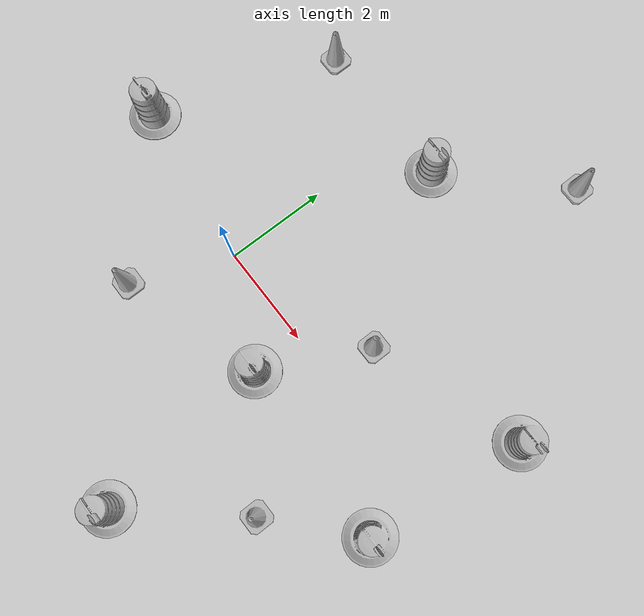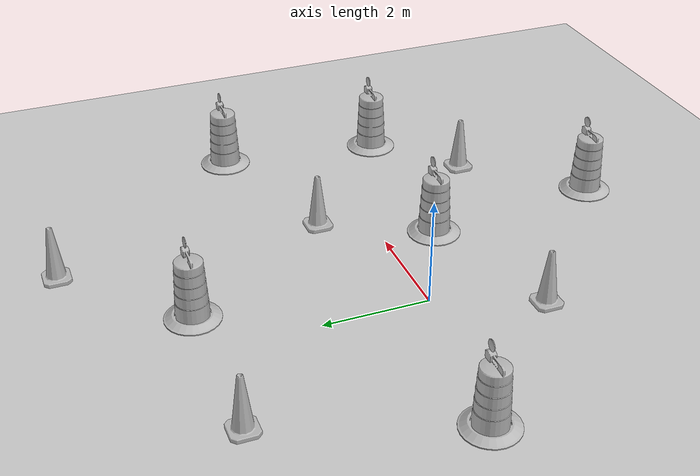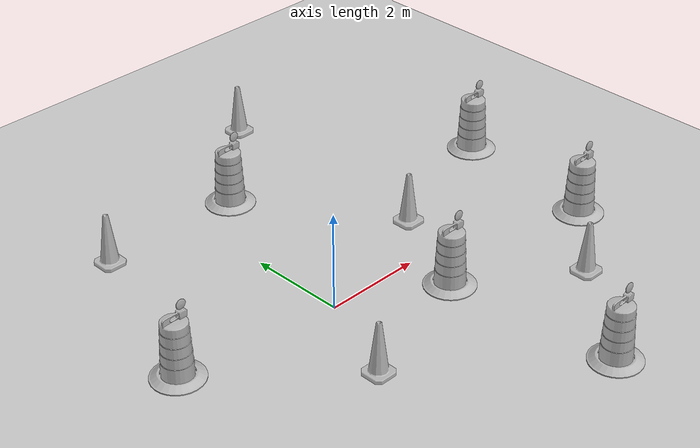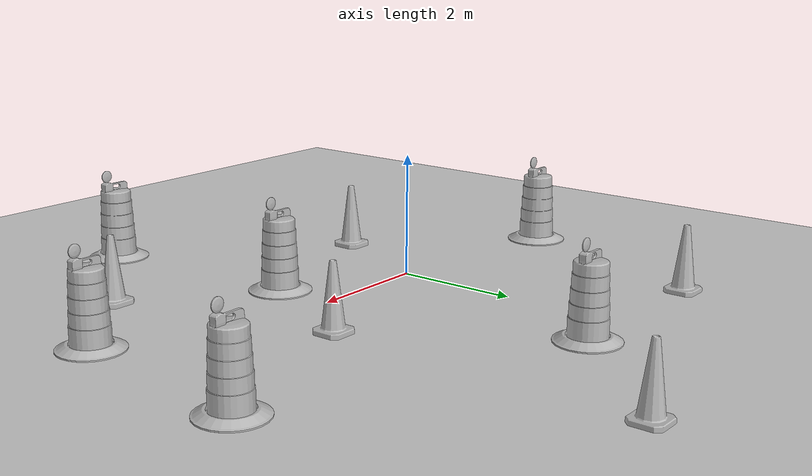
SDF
<sdf version="1.7">
 <world name="default">
  <light name="sun" type="directional">
   <pose>0 0 10 0 -0 0</pose>
   <diffuse>0.8 0.8 0.8 1</diffuse>
   <specular>0.2 0.2 0.2 1</specular>
   <attenuation>
    <range>1000</range>
    <constant>0.9</constant>
    <linear>0.01</linear>
    <quadratic>0.001</quadratic>
   </attenuation>
   <direction>-0.5 0.1 -0.9</direction>
   <spot><inner_angle>0</inner_angle><outer_angle>0</outer_angle><falloff>0</falloff></spot>
  </light>
  <model name="ground_plane">
   <static>1</static>
   <link name="link">
    <collision name="collision">
     <geometry><plane><normal>0 0 1</normal><size>100 100</size></plane></geometry>
     <surface>
      <contact><collide_bitmask>65535</collide_bitmask></contact>
      <friction><ode><mu>100</mu><mu2>50</mu2></ode></friction>
     </surface>
    </collision>
    <visual name="visual">
     <cast_shadows>0</cast_shadows>
     <geometry><plane><normal>0 0 1</normal><size>100 100</size></plane></geometry>
     <material>
      <script><uri>file://media/materials/scripts/gazebo.material</uri><name>Gazebo/Grey</name></script>
     </material>
    </visual>
   </link>
  </model>
  <gravity>0 0 -9.8</gravity>
  <magnetic_field>6e-06 2.3e-05 -4.2e-05</magnetic_field>
  <atmosphere type="adiabatic"/>
  <physics type="ode">
   <max_step_size>0.001</max_step_size>
   <real_time_factor>1</real_time_factor>
   <real_time_update_rate>1000</real_time_update_rate>
  </physics>
  <scene><ambient>0.4 0.4 0.4 1</ambient><background>0.7 0.7 0.7 1</background><shadows>1</shadows></scene>
  <spherical_coordinates>
   <surface_model>EARTH_WGS84</surface_model>
   <latitude_deg>0</latitude_deg>
   <longitude_deg>0</longitude_deg>
   <elevation>0</elevation>
   <heading_deg>0</heading_deg>
  </spherical_coordinates>
  <model name="Construction Barrel">
   <link name="link">
    <inertial>
     <pose>0 0 0.4 0 -0 0</pose>
     <mass>500</mass>
     <inertia><ixx>51.2096</ixx><iyy>51.2096</iyy><izz>25</izz><ixy>0</ixy><ixz>0</ixz><iyz>0</iyz></inertia>
    </inertial>
    <collision name="collision">
     <geometry><mesh><uri>model://construction_barrel/meshes/construction_barrel.dae</uri></mesh></geometry>
    </collision>
    <visual name="visual">
     <geometry><mesh><uri>model://construction_barrel/meshes/construction_barrel.dae</uri></mesh></geometry>
    </visual>
   </link>
   <pose>-3.25836 0.474497 1e-06 3e-06 2e-06 -1.7e-05</pose>
  </model>
  <model name="Construction Barrel_clone">
   <link name="link">
    <inertial>
     <pose>0 0 0.4 0 -0 0</pose>
     <mass>500</mass>
     <inertia><ixx>51.2096</ixx><iyy>51.2096</iyy><izz>25</izz><ixy>0</ixy><ixz>0</ixz><iyz>0</iyz></inertia>
    </inertial>
    <collision name="collision">
     <geometry><mesh><uri>model://construction_barrel/meshes/construction_barrel.dae</uri></mesh></geometry>
    </collision>
    <visual name="visual">
     <geometry><mesh><uri>model://construction_barrel/meshes/construction_barrel.dae</uri></mesh></geometry>
    </visual>
   </link>
   <pose>2.36109 -4.52789 -1e-06 4e-06 -1e-06 -1.5e-05</pose>
  </model>
  <model name="Construction Barrel_clone_0">
   <link name="link">
    <inertial>
     <pose>0 0 0.4 0 -0 0</pose>
     <mass>500</mass>
     <inertia><ixx>51.2096</ixx><iyy>51.2096</iyy><izz>25</izz><ixy>0</ixy><ixz>0</ixz><iyz>0</iyz></inertia>
    </inertial>
    <collision name="collision">
     <geometry><mesh><uri>model://construction_barrel/meshes/construction_barrel.dae</uri></mesh></geometry>
    </collision>
    <visual name="visual">
     <geometry><mesh><uri>model://construction_barrel/meshes/construction_barrel.dae</uri></mesh></geometry>
    </visual>
   </link>
   <pose>5.61977 -1.15631 -2e-06 4e-06 7e-06 -1.4e-05</pose>
  </model>
  <model name="Construction Barrel_clone_1">
   <link name="link">
    <inertial>
     <pose>0 0 0.4 0 -0 0</pose>
     <mass>500</mass>
     <inertia><ixx>51.2096</ixx><iyy>51.2096</iyy><izz>25</izz><ixy>0</ixy><ixz>0</ixz><iyz>0</iyz></inertia>
    </inertial>
    <collision name="collision">
     <geometry><mesh><uri>model://construction_barrel/meshes/construction_barrel.dae</uri></mesh></geometry>
    </collision>
    <visual name="visual">
     <geometry><mesh><uri>model://construction_barrel/meshes/construction_barrel.dae</uri></mesh></geometry>
    </visual>
   </link>
   <pose>0.999934 3.99998 -5e-06 -9e-06 -9e-06 -1.4e-05</pose>
  </model>
  <model name="Construction Barrel_clone_2">
   <link name="link">
    <inertial>
     <pose>0 0 0.4 0 -0 0</pose>
     <mass>500</mass>
     <inertia><ixx>51.2096</ixx><iyy>51.2096</iyy><izz>25</izz><ixy>0</ixy><ixz>0</ixz><iyz>0</iyz></inertia>
    </inertial>
    <collision name="collision">
     <geometry><mesh><uri>model://construction_barrel/meshes/construction_barrel.dae</uri></mesh></geometry>
    </collision>
    <visual name="visual">
     <geometry><mesh><uri>model://construction_barrel/meshes/construction_barrel.dae</uri></mesh></geometry>
    </visual>
   </link>
   <pose>1.99995 -1.00002 0 0 0 -1.2e-05</pose>
  </model>
  <model name="Construction Barrel_clone_3">
   <link name="link">
    <inertial>
     <pose>0 0 0.4 0 -0 0</pose>
     <mass>500</mass>
     <inertia><ixx>51.2096</ixx><iyy>51.2096</iyy><izz>25</izz><ixy>0</ixy><ixz>0</ixz><iyz>0</iyz></inertia>
    </inertial>
    <collision name="collision">
     <geometry><mesh><uri>model://construction_barrel/meshes/construction_barrel.dae</uri></mesh></geometry>
    </collision>
    <visual name="visual">
     <geometry><mesh><uri>model://construction_barrel/meshes/construction_barrel.dae</uri></mesh></geometry>
    </visual>
   </link>
   <pose>5.99997 1.99999 -0 0 0 -9e-06</pose>
  </model>
  <model name="Construction Cone">
   <link name="link">
    <collision name="collision">
     <geometry>
      <mesh><scale>10 10 10</scale><uri>model://construction_cone/meshes/construction_cone.dae</uri></mesh>
     </geometry>
    </collision>
    <visual name="visual">
     <geometry>
      <mesh><scale>10 10 10</scale><uri>model://construction_cone/meshes/construction_cone.dae</uri></mesh>
     </geometry>
    </visual>
    <inertial>
     <inertia><ixx>1</ixx><ixy>0</ixy><ixz>0</ixz><iyy>1</iyy><iyz>0</iyz><izz>1</izz></inertia>
     <mass>1</mass>
    </inertial>
   </link>
   <pose>-0.788898 -1.88257 -2e-06 -3e-06 -1e-06 -0</pose>
  </model>
  <model name="Construction Cone_clone">
   <link name="link">
    <collision name="collision">
     <geometry>
      <mesh><scale>10 10 10</scale><uri>model://construction_cone/meshes/construction_cone.dae</uri></mesh>
     </geometry>
    </collision>
    <visual name="visual">
     <geometry>
      <mesh><scale>10 10 10</scale><uri>model://construction_cone/meshes/construction_cone.dae</uri></mesh>
     </geometry>
    </visual>
    <inertial>
     <inertia><ixx>1</ixx><ixy>0</ixy><ixz>0</ixz><iyy>1</iyy><iyz>0</iyz><izz>1</izz></inertia>
     <mass>1</mass>
    </inertial>
   </link>
   <pose>4.10347 -2.52746 -0 0 -0 0</pose>
  </model>
  <model name="Construction Cone_clone_0">
   <link name="link">
    <collision name="collision">
     <geometry>
      <mesh><scale>10 10 10</scale><uri>model://construction_cone/meshes/construction_cone.dae</uri></mesh>
     </geometry>
    </collision>
    <visual name="visual">
     <geometry>
      <mesh><scale>10 10 10</scale><uri>model://construction_cone/meshes/construction_cone.dae</uri></mesh>
     </geometry>
    </visual>
    <inertial>
     <inertia><ixx>1</ixx><ixy>0</ixy><ixz>0</ixz><iyy>1</iyy><iyz>0</iyz><izz>1</izz></inertia>
     <mass>1</mass>
    </inertial>
   </link>
   <pose>3 1 -6e-06 -4e-06 0 0</pose>
  </model>
  <model name="Construction Cone_clone_1">
   <link name="link">
    <collision name="collision">
     <geometry>
      <mesh><scale>10 10 10</scale><uri>model://construction_cone/meshes/construction_cone.dae</uri></mesh>
     </geometry>
    </collision>
    <visual name="visual">
     <geometry>
      <mesh><scale>10 10 10</scale><uri>model://construction_cone/meshes/construction_cone.dae</uri></mesh>
     </geometry>
    </visual>
    <inertial>
     <inertia><ixx>1</ixx><ixy>0</ixy><ixz>0</ixz><iyy>1</iyy><iyz>0</iyz><izz>1</izz></inertia>
     <mass>1</mass>
    </inertial>
   </link>
   <pose>-2 4 -0 0 -0 0</pose>
  </model>
  <model name="Construction Cone_clone_2">
   <link name="link">
    <collision name="collision">
     <geometry>
      <mesh><scale>10 10 10</scale><uri>model://construction_cone/meshes/construction_cone.dae</uri></mesh>
     </geometry>
    </collision>
    <visual name="visual">
     <geometry>
      <mesh><scale>10 10 10</scale><uri>model://construction_cone/meshes/construction_cone.dae</uri></mesh>
     </geometry>
    </visual>
    <inertial>
     <inertia><ixx>1</ixx><ixy>0</ixy><ixz>0</ixz><iyy>1</iyy><iyz>0</iyz><izz>1</izz></inertia>
     <mass>1</mass>
    </inertial>
   </link>
   <pose>3 6 -0 0 -1e-06 0</pose>
  </model>
 </world>
</sdf>
